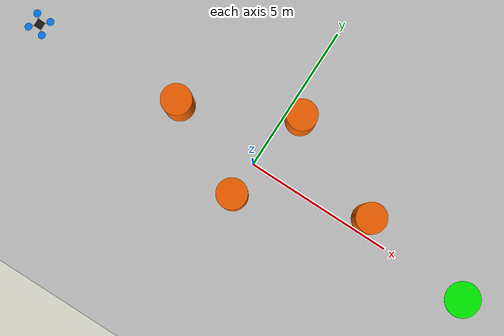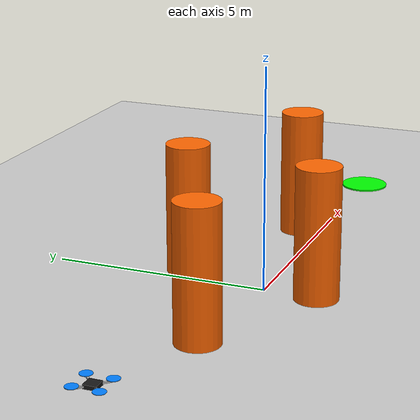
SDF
<?xml version="1.0"?>
<sdf version="1.6">
  <world name="obstacles">
    <include><uri>model://ground_plane</uri></include>
    <include><uri>model://sun</uri></include>

    <!-- Obstacles (cylinders) -->
    <model name="obs1"><static>true</static><pose>-3 0.3 1.5 0 0 0</pose><link name="l">
      <collision name="c"><geometry><cylinder><radius>0.5</radius><length>3</length></cylinder></geometry></collision>
      <visual name="v"><geometry><cylinder><radius>0.5</radius><length>3</length></cylinder></geometry>
      <material><ambient>1 0.4 0 1</ambient><diffuse>1 0.4 0 1</diffuse></material></visual></link></model>
    <model name="obs2"><static>true</static><pose>0 -1.2 1.5 0 0 0</pose><link name="l">
      <collision name="c"><geometry><cylinder><radius>0.5</radius><length>3</length></cylinder></geometry></collision>
      <visual name="v"><geometry><cylinder><radius>0.5</radius><length>3</length></cylinder></geometry>
      <material><ambient>1 0.4 0 1</ambient><diffuse>1 0.4 0 1</diffuse></material></visual></link></model>
    <model name="obs3"><static>true</static><pose>0.5 2 1.5 0 0 0</pose><link name="l">
      <collision name="c"><geometry><cylinder><radius>0.5</radius><length>3</length></cylinder></geometry></collision>
      <visual name="v"><geometry><cylinder><radius>0.5</radius><length>3</length></cylinder></geometry>
      <material><ambient>1 0.4 0 1</ambient><diffuse>1 0.4 0 1</diffuse></material></visual></link></model>
    <model name="obs4"><static>true</static><pose>4 0.5 1.5 0 0 0</pose><link name="l">
      <collision name="c"><geometry><cylinder><radius>0.5</radius><length>3</length></cylinder></geometry></collision>
      <visual name="v"><geometry><cylinder><radius>0.5</radius><length>3</length></cylinder></geometry>
      <material><ambient>1 0.4 0 1</ambient><diffuse>1 0.4 0 1</diffuse></material></visual></link></model>

    <!-- Goal marker (point B), no collision -->
    <model name="goal"><static>true</static><pose>8 0 0.02 0 0 0</pose><link name="l">
      <visual name="v"><geometry><cylinder><radius>0.6</radius><length>0.04</length></cylinder></geometry>
      <material><ambient>0 1 0 1</ambient><diffuse>0 1 0 1</diffuse></material></visual></link></model>

    <!-- Drone -->
    <model name="drone">
      <pose>-8 0 1.5 0 0 0</pose>
      <link name="base_link">
        <gravity>false</gravity>
        <inertial><mass>1.0</mass>
          <inertia><ixx>0.01</ixx><iyy>0.01</iyy><izz>0.02</izz><ixy>0</ixy><ixz>0</ixz><iyz>0</iyz></inertia></inertial>
        <visual name="body"><geometry><box><size>0.25 0.25 0.08</size></box></geometry>
          <material><ambient>0.1 0.1 0.1 1</ambient><diffuse>0.1 0.1 0.1 1</diffuse></material></visual>
        <visual name="arm1"><pose>0 0 0 0 0 0.785</pose><geometry><box><size>0.7 0.04 0.03</size></box></geometry></visual>
        <visual name="arm2"><pose>0 0 0 0 0 -0.785</pose><geometry><box><size>0.7 0.04 0.03</size></box></geometry></visual>
        <visual name="r1"><pose>0.25 0.25 0.04 0 0 0</pose><geometry><cylinder><radius>0.12</radius><length>0.01</length></cylinder></geometry>
          <material><ambient>0 0.5 1 1</ambient><diffuse>0 0.5 1 1</diffuse></material></visual>
        <visual name="r2"><pose>-0.25 0.25 0.04 0 0 0</pose><geometry><cylinder><radius>0.12</radius><length>0.01</length></cylinder></geometry>
          <material><ambient>0 0.5 1 1</ambient><diffuse>0 0.5 1 1</diffuse></material></visual>
        <visual name="r3"><pose>0.25 -0.25 0.04 0 0 0</pose><geometry><cylinder><radius>0.12</radius><length>0.01</length></cylinder></geometry>
          <material><ambient>0 0.5 1 1</ambient><diffuse>0 0.5 1 1</diffuse></material></visual>
        <visual name="r4"><pose>-0.25 -0.25 0.04 0 0 0</pose><geometry><cylinder><radius>0.12</radius><length>0.01</length></cylinder></geometry>
          <material><ambient>0 0.5 1 1</ambient><diffuse>0 0.5 1 1</diffuse></material></visual>

        <!-- 2D lidar -->
        <sensor name="lidar" type="ray">
          <pose>0 0 0.06 0 0 0</pose>
          <always_on>true</always_on>
          <update_rate>10</update_rate>
          <visualize>true</visualize>
          <ray>
            <scan><horizontal><samples>360</samples><resolution>1</resolution>
              <min_angle>-3.14159</min_angle><max_angle>3.14159</max_angle></horizontal></scan>
            <range><min>0.2</min><max>6.0</max><resolution>0.01</resolution></range>
          </ray>
          <plugin name="lidar_plugin" filename="libgazebo_ros_ray_sensor.so">
            <ros><namespace>/drone</namespace><remapping>~/out:=scan</remapping></ros>
            <output_type>sensor_msgs/LaserScan</output_type>
            <frame_name>base_link</frame_name>
          </plugin>
        </sensor>
      </link>

      <!-- Velocity control (cmd_vel) + odometry -->
      <plugin name="drone_move" filename="libgazebo_ros_planar_move.so">
        <ros><namespace>/drone</namespace></ros>
        <update_rate>50</update_rate>
        <publish_rate>20</publish_rate>
        <publish_odom>true</publish_odom>
        <publish_odom_tf>false</publish_odom_tf>
        <odometry_frame>odom</odometry_frame>
        <robot_base_frame>base_link</robot_base_frame>
      </plugin>
    </model>
  </world>
</sdf>
